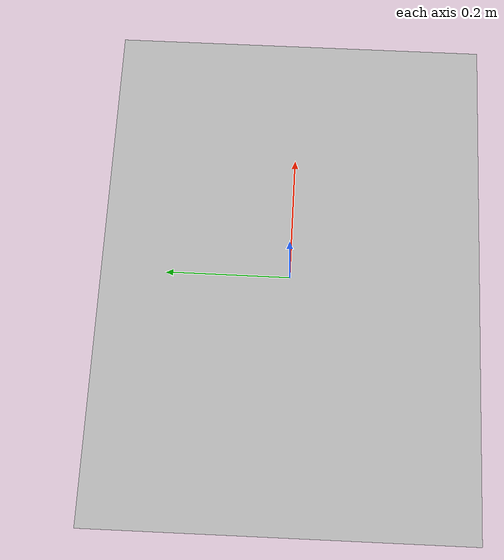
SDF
<?xml version="1.0"?>
<sdf version="1.7" xmlns:drake="http://drake.mit.edu">
  <model name="table">
    <link name="table_top">
      <inertial>
        <mass>10.0</mass>
        <inertia>
          <ixx>0.3020833333333333</ixx><iyy>0.5354166666666667</iyy><izz>0.8333333333333333</izz>
          <ixy>0</ixy><ixz>0</ixz><iyz>0</iyz>
        </inertia>
      </inertial>

      <visual name="visual">
        <geometry><box><size>0.8 0.6 0.05</size></box></geometry>
        <material>
          <ambient>0.6 0.6 0.6 1</ambient>
          <diffuse>0.7 0.7 0.7 1</diffuse>
        </material>
      </visual>

      <collision name="collision">
        <geometry><box><size>0.8 0.6 0.05</size></box></geometry>
        <drake:proximity_properties>
          <drake:hunt_crossley_dissipation>1.0</drake:hunt_crossley_dissipation>
          <drake:mu_static>1.0</drake:mu_static>
          <drake:mu_dynamic>0.8</drake:mu_dynamic>
        </drake:proximity_properties>
      </collision>
    </link>
  </model>
</sdf>
